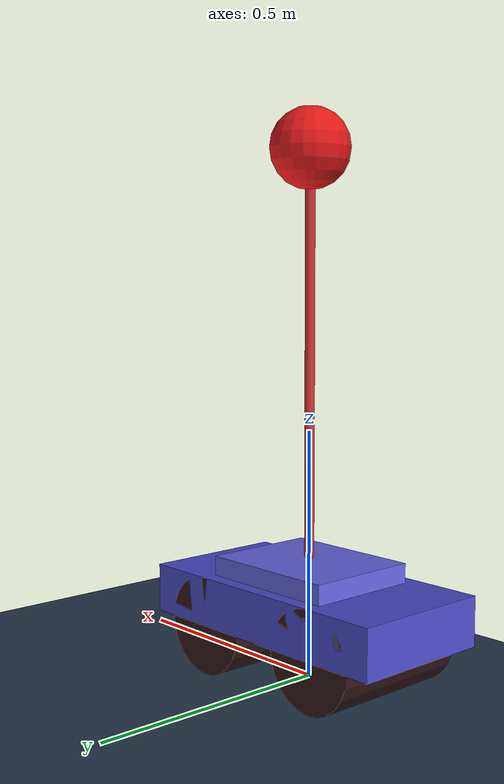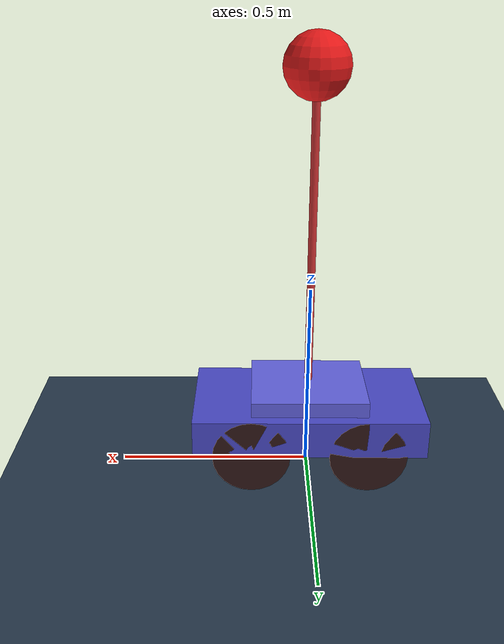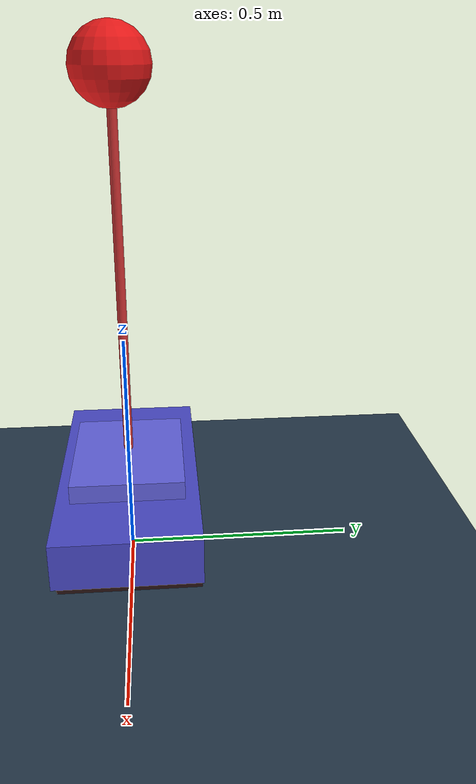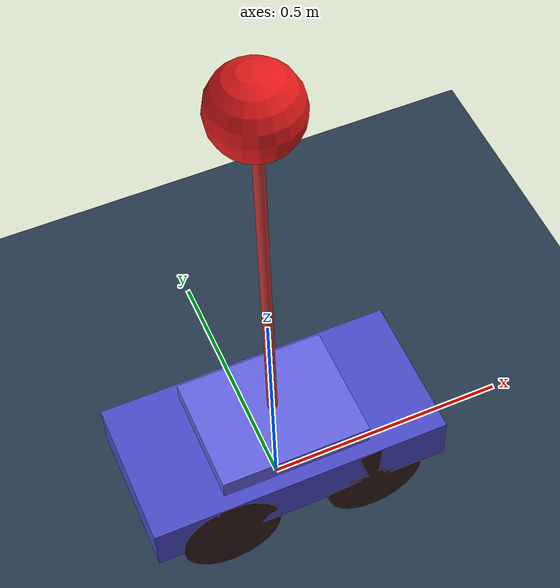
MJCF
<mujoco model="mobile_inverted_pendulum">

  <compiler angle="degree" coordinate="local" inertiafromgeom="true"/>

<option gravity="0 0 -9.81"
        timestep="0.001"
        integrator="RK4"
        viscosity="0.0052"/>

  <default>
    <joint damping="0.1" />
    <geom friction="1.0 0.1 0.1" />
  </default>

  <asset>
    <texture name="grid" type="2d" builtin="checker" width="512" height="512"
             rgb1="0.2 0.3 0.4" rgb2="0.1 0.15 0.2"/>
    <material name="grid" texture="grid" texrepeat="1 1" texuniform="true" reflectance="0.2"/>
  </asset>

  <worldbody>

    <!-- Ground plane -->
    <geom name="ground" type="plane" pos="0 0 0" size="10 10 0.1"
          material="grid" condim="3"/>

    <light directional="true" pos="0 0 3" dir="0 0 -1"/>

    <!-- Mobile robot chassis (elevated by wheel radius) -->
    <body name="chassis" pos="0 0 0.15">
      <joint name="chassis_slide_x" type="slide" axis="1 0 0"/>
      <geom name="chassis_geom" type="box" size="0.3 0.15 0.05"
            density="100" rgba="0.3 0.3 0.8 1"/>
      <geom name="chassis_top" type="box" size="0.15 0.12 0.02"
            pos="0 0 0.07" density="100" rgba="0.4 0.4 0.9 1"/>

      <!-- IMU sensor site on chassis -->
      <site name="imu_site" pos="0 0 0.05" size="0.01"/>

    <!-- Left sliding cylinder -->
        <body name="wheel_left" pos="-0.15 0 -0.05"  euler="90 0 0">
        <joint name="left_wheel_joint" type="slide" axis="0 0 1" range="-0.05 0.05"/>
    <geom name="wheel_left_geom" type="cylinder" size="0.1 0.15 0.05"
              density="50" rgba="0.2 0.1 0.1 1"
              friction="1.5 0.01 0.01"/>

    </body>

        <!-- Right sliding cylinder -->
        <body name="wheel_right" pos="0.15 0 -0.05" euler="90 0 0">
        <joint name="right_wheel_joint" type="slide" axis="0 0 1" range="-0.05 0.05"/>
          <geom name="wheel_right_geom" type="cylinder" size="0.1 0.15 0.05"
              density="50" rgba="0.2 0.1 0.1 1"
              friction="1.5 0.01 0.01"/>
        </body>

      <!-- Inverted pendulum mount point -->
      <body name="pendulum_base" pos="0 0 0.1">

        <!-- Pendulum rod -->
        <body name="pendulum_rod" pos="0 0 0">
          <joint name="pendulum_hinge" type="hinge" axis="0 1 0"
                 damping="0.1" frictionloss="0"
                 range="-180 180" limited="false"/>

          <!-- Rod visualization -->
          <geom name="pendulum_rod_geom" type="capsule"
                fromto="0 0 0 0 0 0.85" size="0.010"
                density="2" rgba="0.8 0.2 0.2 1"/>

          <!-- Top mass (the ball to balance) -->
          <body name="pendulum_mass" pos="0 0 0.8">
            <geom name="top_mass_geom" type="sphere" size="0.08"
                  density="6" rgba="0.9 0.1 0.1 1"/>

          </body>

        </body>
      </body>

    </body>
  </worldbody>

<actuator>
  <motor name="cart_motor" joint="chassis_slide_x" gear="100"/>
</actuator>

<equality>
    <weld body1="wheel_left" body2="wheel_right"/>
</equality>

  <sensor>
    <!-- Pendulum angle -->
    <jointpos name="pendulum_angle" joint="pendulum_hinge"/>
    <jointvel name="pendulum_velocity" joint="pendulum_hinge"/>

    <!-- Wheel positions and velocities -->
    <jointpos name="left_wheel_pos" joint="left_wheel_joint"/>
    <jointvel name="left_wheel_vel" joint="left_wheel_joint"/>
    <jointpos name="right_wheel_pos" joint="right_wheel_joint"/>
    <jointvel name="right_wheel_vel" joint="right_wheel_joint"/>

    <!-- Chassis state -->
    <framepos name="chassis_position" objtype="body" objname="chassis"/>
    <framelinvel name="chassis_velocity" objtype="body" objname="chassis"/>
    <framequat name="chassis_orientation" objtype="body" objname="chassis"/>
    <gyro name="chassis_gyro" site="imu_site"/>
    <accelerometer name="chassis_accel" site="imu_site"/>
  </sensor>

</mujoco>
